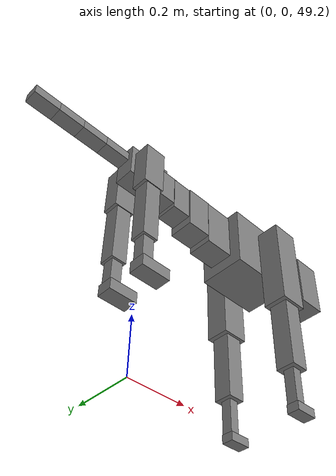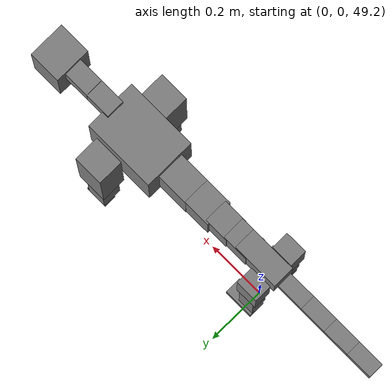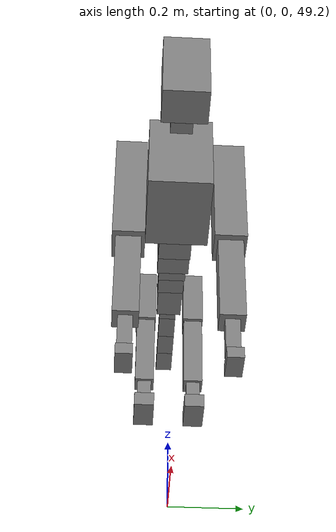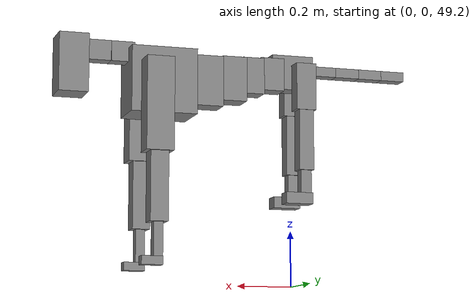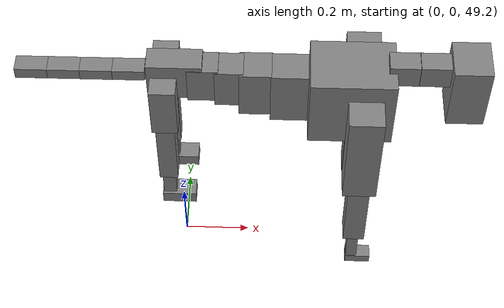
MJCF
<mujoco model="dog">

    <default>
        <joint armature="0.02" stiffness="1" damping="0.2" limited="true"/>
        <geom condim="3" friction="1 0.05 0.05" margin="0.01"/>
        <motor ctrllimited="true" ctrlrange="-1.0 1.0" forcelimited="true" gear="50"/>
    </default>

    <compiler inertiafromgeom="true" angle="radian"/>

    <option timestep="0.016" iterations="50" tolerance="1e-10" solver="Newton" jacobian="dense" cone="pyramidal"/>

    <size nconmax="20000" njmax="60000" nstack="5000000"/>
    <visual>
        <map force="0.1" zfar="30"/>
        <rgba haze="0.15 0.25 0.35 1"/>
        <quality shadowsize="2048"/>
        <global offwidth="800" offheight="800"/>
    </visual>

    <asset>
        <texture type="skybox" builtin="gradient" rgb1="0.3 0.5 0.7" rgb2="0 0 0" width="512" height="512"/>
        <texture name="texplane" type="2d" builtin="checker" rgb1=".2 .3 .4" rgb2=".1 0.15 0.2" width="512" height="512"
                 mark="cross" markrgb=".8 .8 .8"/>
        <texture name="texgeom" type="cube" builtin="flat" mark="cross" width="127" height="1278" rgb1="0.8 0.6 0.4"
                 rgb2="0.8 0.6 0.4" markrgb="1 1 1" random="0.01"/>

        <material name="matplane" reflectance="0.3" texture="texplane" texrepeat="1 1" texuniform="true"/>
        <material name="matgeom" texture="texgeom" texuniform="true" rgba="0.8 0.6 .4 1"/>
    </asset>

    <worldbody>
        <geom name="floor" pos="0 0 0" size="0 0 .25" type="plane" material="matplane" condim="3"/>

        <light directional="false" diffuse=".2 .2 .2" specular="0 0 0" pos="0 0 5" dir="0 0 -1" castshadow="false"/>
        <light mode="targetbodycom" target="torso" directional="false" diffuse=".8 .8 .8" specular="0.3 0.3 0.3"
               pos="0 0 4.0" dir="0 0 -1"/>

        <body name="root" pos="0 0 50">
            <freejoint name="root_1"/>
            <geom type="box" pos="0 0 -0.02" size="0.0774  0.0358  0.063" density="2030"/>

            <body name="spine1" pos="0.054 0 0">
                <joint name="spine1_y" axis="0 1 0" range="0 0.7" limited="true"/>
                <geom type="box" pos="0.02375 0 -0.03" size="0.04375  0.0375  0.05985" density="2030"/>

                <body name="spine2" pos="0.0612 0 0">
                    <joint name="spine2_y" axis="0 1 0" range="-0.15 0.15" limited="true"/>
                    <geom type="box" pos="0.03555  0  -0.04" size="0.04055  0.039  0.06615" density="2030"/>

                    <body name="spine3" pos="0.0730 0 0">
                        <joint name="spine3_y" axis="0 1 0" range="-0.15 0.15" limited="true"/>
                        <geom type="box" pos="0.03555  0  -0.057" size="0.04555  0.0445  0.081" density="2030"/>

                        <body name="spine4" pos="0.0780 0 0">
                            <joint name="spine4_y" axis="0 1 0" range="-0.15 0.15" limited="true"/>
                            <geom type="box" pos="0.05265  0  -0.07" size="0.05265  0.045  0.09135" density="2030"/>

                            <body name="torso" pos="0.1082 0 0">
                                <joint name="torso_y" axis="0 1 0" range="-0.15 0.15" limited="true"/>
                                <geom type="box" pos="0.11925  0  -0.085" size="0.11925  0.085  0.11745"
                                      density="2030"/>

                                <body name="neck1" pos="0.2160  0   0.0180">
                                    <joint name="neck1_y" axis="0 1 0" range="-1.2  -1" limited="true"/>
                                    <geom type="box" pos="0.0423  0  0" size="0.0423  0.03  0.036" density="2325"/>

                                    <body name="neck2" pos="0.0853  0  0">
                                        <joint name="neck2_y" axis="0 1 0" range="0.1  0" limited="true"/>
                                        <geom type="box" pos="0.0423  0  0" size="0.0423  0.03  0.036" density="2325"/>

                                        <body name="head" pos="0.0853  0  0">
                                            <joint name="head_y" axis="0 1 0" range="-0.3  -0.2" limited="true"/>
                                            <geom type="box" pos="0.0531  0  -0.055" size="0.0531  0.06  0.1044"
                                                  density="4030"/>

                                        </body>
                                    </body>
                                </body>

                                <body name="front_shoulder" pos="0.156  0   -0.0480">
                                    <joint name="front_shoulder_y" axis="0 1 0" range="-1 1.5" limited="true"/>
                                    <geom type="box" pos="0 0.13 -0.1385" size="0.0491  0.0419  0.1651" density="1158"/>
                                    <geom type="box" pos="0 -0.13 -0.1385" size="0.0491  0.0419  0.1651"
                                          density="1158"/>

                                    <body name="front_elbow" pos="0  0  -0.2769">
                                        <joint name="front_elbow_y" axis="0 1 0" range="-2 0" limited="true"/>
                                        <geom type="box" pos="0 0.13 -0.1357" size="0.0321  0.0328  0.1357"
                                              density="1081"/>
                                        <geom type="box" pos="0 -0.13 -0.1357" size="0.0321  0.0328  0.1357"
                                              density="1081"/>

                                        <body name="front_wrist" pos="0  0  -0.2713">
                                            <joint name="front_wrist_y" axis="0 1 0" range="-0.2 0" limited="true"/>
                                            <geom type="box" pos="0 0.13 -0.0665" size="0.0166  0.0184  0.0797"
                                                  density="1664"/>
                                            <geom type="box" pos="0 -0.13 -0.0665" size="0.0166  0.0184  0.0797"
                                                  density="1664"/>

                                            <body name="front_finger_end" pos="0  0  -0.1331">
                                                <joint name="front_finger_y" axis="0 1 0" range="-0.4 1"
                                                       limited="true"/>
                                                <geom type="box" pos="0.0208  0.13  -0.0001"
                                                      size="0.0382  0.0208  0.0151" density="1515"/>
                                                <geom type="box" pos="0.0208  -0.13  -0.0001"
                                                      size="0.0382  0.0208  0.0151" density="1515"/>

                                            </body>

                                        </body>
                                    </body>
                                </body>

                            </body>
                        </body>
                    </body>
                </body>
            </body>

            <body name="back_hip" pos="-0.03 0 -0.018">
                <joint name="back_hip_y" axis="0 1 0" range="-1.5 0.3" limited="true"/>
                <geom type="box" pos="0 0.07 -0.0624" size="0.0369  0.0289  0.0852" density="1154"/>
                <geom type="box" pos="0 -0.07 -0.0624" size="0.0369  0.0289  0.0852" density="1154"/>

                <body name="back_knee" pos="0  0  -0.1248">
                    <joint name="back_knee_y" axis="0 1 0" range="0 2.8" limited="true"/>
                    <geom type="box" pos="0 0.07 -0.1131" size="0.0271  0.0267  0.1287" density="1227"/>
                    <geom type="box" pos="0 -0.07 -0.1131" size="0.0271  0.0267  0.1287" density="1227"/>

                    <body name="back_ankle" pos="0  0  -0.2263">
                        <joint name="back_ankle_y" axis="0 1 0" range="-2.2 0" limited="true"/>
                        <geom type="box" pos="0 0.07 -0.0567" size="0.0194  0.0194  0.0679" density="1284"/>
                        <geom type="box" pos="0 -0.07 -0.0567" size="0.0194  0.0194  0.0679" density="1284"/>

                        <body name="back_toe_end" pos="0  0  -0.1134">
                            <joint name="back_toe_y" axis="0 1 0" range="-0.4 1" limited="true"/>
                            <geom type="box" pos="0.0273  0.07  -0.0052" size="0.0500  0.0273  0.0202" density="1515"/>
                            <geom type="box" pos="0.0273  -0.07  -0.0052" size="0.0500  0.0273  0.0202" density="1515"/>

                        </body>
                    </body>
                </body>
            </body>

            <body name="tail1" pos="-0.074 0 -0.006">
                <joint name="tail1_y" axis="0 1 0" range="-0.2 0.2" limited="true"/>
                <geom type="box" pos="-0.0536  0  0" size="0.045  0.025  0.0175" density="1587"/>

                <body name="tail2" pos="-0.09 0 0">
                    <joint name="tail2_y" axis="0 1 0" range="-0.2 0.2" limited="true"/>
                    <geom type="box" pos="-0.0536  0  0" size="0.045  0.025  0.0175" density="1587"/>

                    <body name="tail3" pos="-0.09 0 0">
                        <joint name="tail3_y" axis="0 1 0" range="-0.2 0.2" limited="true"/>
                        <geom type="box" pos="-0.0536  0  0" size="0.045  0.025  0.0175" density="1587"/>

                        <body name="tail4" pos="-0.09 0 0">
                            <joint name="tail4_y" axis="0 1 0" range="-0.2 0.2" limited="true"/>
                            <geom type="box" pos="-0.0536  0  0" size="0.045  0.025  0.0175" density="1587"/>

                        </body>
                    </body>
                </body>
            </body>
        </body>
    </worldbody>

    <actuator>
        <motor joint="spine1_y" forcerange="-150 150     "/>
        <motor joint="spine2_y" forcerange="-150 150     "/>
        <motor joint="spine3_y" forcerange="-150 150     "/>
        <motor joint="spine4_y" forcerange="-150 150     "/>
        <motor joint="torso_y" forcerange="-150 150     "/>
        <motor joint="neck1_y" forcerange="-100 100       "/>
        <motor joint="neck2_y" forcerange="-100 100       "/>
        <motor joint="head_y" forcerange="-150 150       "/>
        <motor joint="front_shoulder_y" forcerange="-196.88 182.69"/>
        <motor joint="front_elbow_y" forcerange="-163.19 175.65"/>
        <motor joint="front_wrist_y" forcerange="-63.74 83.61"/>
        <motor joint="front_finger_y" forcerange="-35.25 35.80"/>
        <motor joint="back_hip_y" forcerange="-283.11 302.62"/>
        <motor joint="back_knee_y" forcerange="-368.32 220.21"/>
        <motor joint="back_angle_y" forcerange="-105.99 104.45"/>
        <motor joint="back_toe_y" forcerange="-108.97 29.12"/>
        <motor joint="tail1_y" forcerange="-50 50     "/>
        <motor joint="tail2_y" forcerange="-50 50     "/>
        <motor joint="tail3_y" forcerange="-50 50     "/>
        <motor joint="tail4_y" forcerange="-50 50     "/>
    </actuator>
</mujoco>
